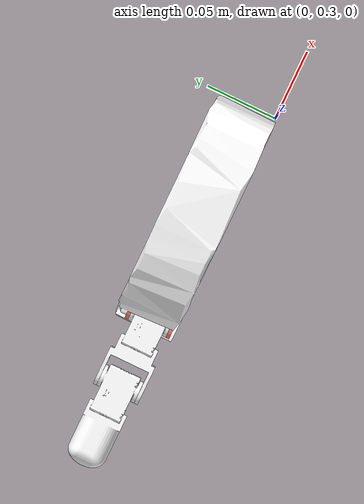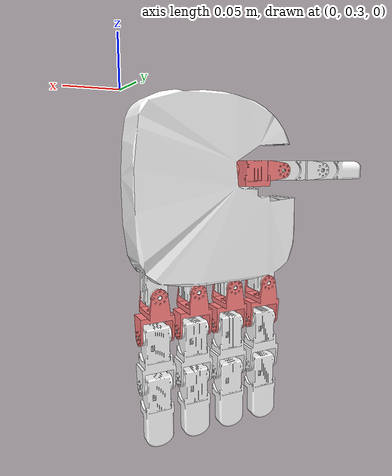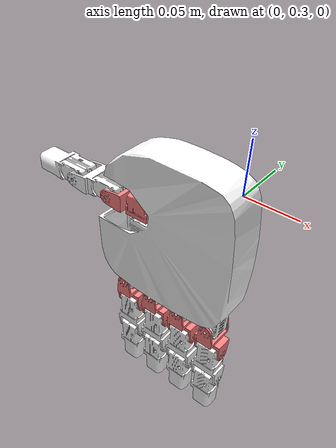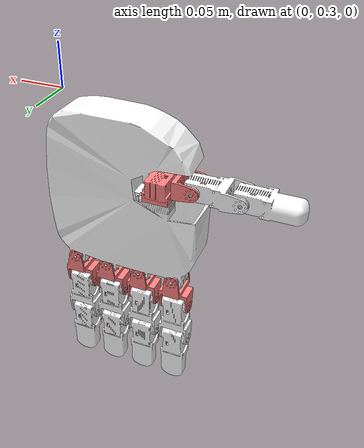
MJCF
<mujoco model="leap_hand_dual_puppeteering">
    <compiler angle="radian" meshdir="../meshes/"/>
    <default>
        <joint damping="1" frictionloss="0.01"/>
        <geom friction="1 0.5 0.5"/>
    </default>
    <option gravity="0 0 -9.81" timestep="0.002"/>

    <asset>
        <mesh name="base_link_simplified" content_type="model/obj" file="base_link_simplified.obj"/>
        <mesh name="Thumb1_Link" content_type="model/stl" file="Thumb1_Link.STL"/>
        <mesh name="Thumb2_Link" content_type="model/stl" file="Thumb2_Link.STL"/>
        <mesh name="Thumb3_Link" content_type="model/stl" file="Thumb3_Link.STL"/>
        <mesh name="Thumb4_Link" content_type="model/stl" file="Thumb4_Link.STL"/>
        <mesh name="Index1_Link" content_type="model/stl" file="Index1_Link.STL"/>
        <mesh name="Index2_Link" content_type="model/stl" file="Index2_Link.STL"/>
        <mesh name="Index3_Link" content_type="model/stl" file="Index3_Link.STL"/>
        <mesh name="Middle1_Link" content_type="model/stl" file="Middle1_Link.STL"/>
        <mesh name="Middle2_Link" content_type="model/stl" file="Middle2_Link.STL"/>
        <mesh name="Middle3_Link" content_type="model/stl" file="Middle3_Link.STL"/>
        <mesh name="Ring1_Link" content_type="model/stl" file="Ring1_Link.STL"/>
        <mesh name="Ring2_Link" content_type="model/stl" file="Ring2_Link.STL"/>
        <mesh name="Ring3_Link" content_type="model/stl" file="Ring3_Link.STL"/>
        <mesh name="Pinky1_Link" content_type="model/stl" file="Pinky1_Link.STL"/>
        <mesh name="Pinky2_Link" content_type="model/stl" file="Pinky2_Link.STL"/>
        <mesh name="Pinky3_Link" content_type="model/stl" file="Pinky3_Link.STL"/>
    </asset>

    <worldbody>
        <body name="base" pos="0 0.3 0">
            <include file="hand_real.xml"/>
        </body>
    </worldbody>

    <actuator>
        <position name="act_J_thumb1" joint="J_thumb1" kp="20" kv="0.1" ctrlrange="-3.14 3.14"/>
        <position name="act_J_thumb2" joint="J_thumb2" kp="2" kv="0.1" ctrlrange="-3.14 3.14"/>
        <position name="act_J_thumb3" joint="J_thumb3" kp="2" kv="0.1" ctrlrange="-3.14 3.14"/>
        <position name="act_J_thumb4" joint="J_thumb4" kp="2" kv="0.1" ctrlrange="-3.14 3.14"/>

        <position name="act_J_index1" joint="J_index1" kp="20" kv="0.1" ctrlrange="-3.14 3.14"/>
        <position name="act_J_index2" joint="J_index2" kp="2" kv="0.1" ctrlrange="-3.14 3.14"/>
        <position name="act_J_index3" joint="J_index3" kp="2" kv="0.1" ctrlrange="-3.14 3.14"/>

        <position name="act_J_middle1" joint="J_middle1" kp="20" kv="0.1" ctrlrange="-3.14 3.14"/>
        <position name="act_J_middle2"  joint="J_middle2"  kp="2" kv="0.1" ctrlrange="-3.14 3.14"/>
        <position name="act_J_middle3" joint="J_middle3" kp="2" kv="0.1" ctrlrange="-3.14 3.14"/>

        <position name="act_J_ring1" joint="J_ring1" kp="20" kv="0.1" ctrlrange="-3.14 3.14"/>
        <position name="act_J_ring2" joint="J_ring2" kp="2" kv="0.1" ctrlrange="-3.14 3.14"/>
        <position name="act_J_ring3" joint="J_ring3" kp="2" kv="0.1" ctrlrange="-3.14 3.14"/>

        <position name="act_J_pinky1" joint="J_pinky1" kp="20" kv="0.1" ctrlrange="-3.14 3.14"/>
        <position name="act_J_pinky2" joint="J_pinky2" kp="2" kv="0.1" ctrlrange="-3.14 3.14"/>
        <position name="act_J_pinky3" joint="J_pinky3" kp="2" kv="0.1" ctrlrange="-3.14 3.14"/>
    </actuator>
</mujoco>

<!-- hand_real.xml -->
<mujoco>

  <geom type="mesh" rgba="1 1 1 1" mesh="base_link_simplified" contype="0" conaffinity="0"/>

  <body name="Thumb1_Link" pos="-0.1227 0.0175 -0.1029" quat="0.707107 0 0 0.707107">
    <inertial pos="0.0063477 -0.000945376 0.0244983" quat="0.000534756 0.701835 -0.000518749 0.712339" mass="0.0118765" diaginertia="1.56227e-06 1.36956e-06 7.3946e-07"/>
    <joint name="J_thumb1" pos="0 0 0" axis="0 0 -1" range="-3.14 3.14"/>
    <geom type="mesh" rgba="1 0.501961 0.501961 1" mesh="Thumb1_Link"/>
    <body name="Thumb2_Link" pos="-0.0005 0 0.0297" quat="0.707105 -0.707108 0 0">
      <inertial pos="0 0 0.021545" quat="0.5 0.5 0.5 0.5" mass="0.00484954" diaginertia="1.03253e-06 9.2868e-07 4.16545e-07"/>
      <joint name="J_thumb2" pos="0 0 0" axis="0 0 -1" range="-3.14 3.14"/>
      <geom type="mesh" rgba="1 0.501961 0.501961 1" mesh="Thumb2_Link"/>
      <body name="Thumb3_Link" pos="0 0 0.0355" quat="0.707107 0 -0.707107 0">
        <inertial pos="0.0202176 -3.20081e-06 0.000783403" quat="0.706611 0.00187659 0.00190458 0.707598" mass="0.0143321" diaginertia="1.90059e-06 1.54257e-06 1.36708e-06"/>
        <joint name="J_thumb3" pos="0 0 0" axis="0 0 -1" range="-3.14 3.14"/>
        <geom type="mesh" rgba="1 1 1 1" mesh="Thumb3_Link"/>
        <body name="Thumb4_Link" pos="0.0507 0 0">
          <inertial pos="0.0324571 0.000463037 0.0004452" quat="0.492542 0.491954 0.507312 0.507955" mass="0.0252146" diaginertia="2.99971e-06 2.65494e-06 1.96564e-06"/>
          <joint name="J_thumb4" pos="0 0 0" axis="0 0 -1" range="-3.14 3.14"/>
          <geom type="mesh" rgba="1 1 1 1" mesh="Thumb4_Link"/>
        </body>
      </body>
    </body>
  </body>
  <body name="Index1_Link" pos="-0.14 0.0201 -0.1897" quat="0.500598 0.499401 0.4994 -0.5006">
    <inertial pos="0.0210002 0 4.99999e-05" quat="0.999999 0 0.00119047 0" mass="0.00969909" diaginertia="1.85736e-06 1.44907e-06 1.44907e-06"/>
    <joint name="J_index1" pos="0 0 0" axis="-0.00238089 0 -0.999997" range="-3.14 3.14"/>
    <geom type="mesh" rgba="1 0.501961 0.501961 1" mesh="Index1_Link"/>
    <body name="Index2_Link" pos="0.0420001 0 0" quat="0.707106 0.707106 0.000841792 -0.000841792">
      <inertial pos="0.0202176 -3.20081e-06 0.000783403" quat="0.706611 0.00187659 0.00190458 0.707598" mass="0.0143321" diaginertia="1.90059e-06 1.54257e-06 1.36708e-06"/>
      <joint name="J_index2" pos="0 0 0" axis="0 0 -1" range="-3.14 3.14"/>
      <geom type="mesh" rgba="1 1 1 1" mesh="Index2_Link"/>
      <body name="Index3_Link" pos="0.0507 0 0">
        <inertial pos="0.0324571 -0.000466675 0.000445378" quat="0.507806 0.506986 0.492158 0.492827" mass="0.0252146" diaginertia="2.99965e-06 2.65494e-06 1.9657e-06"/>
        <joint name="J_index3" pos="0 0 0" axis="0 0 -1" range="-3.14 3.14"/>
        <geom type="mesh" rgba="1 1 1 1" mesh="Index3_Link"/>
      </body>
    </body>
  </body>
  <body name="Middle1_Link" pos="-0.1 0.0201 -0.1897" quat="0.500598 0.499401 0.4994 -0.5006">
    <inertial pos="0.0210002 0 4.99999e-05" quat="0.999999 0 0.00119047 0" mass="0.00969909" diaginertia="1.85736e-06 1.44907e-06 1.44907e-06"/>
    <joint name="J_middle1" pos="0 0 0" axis="-0.00238089 0 -0.999997" range="-3.14 3.14"/>
    <geom type="mesh" rgba="1 0.501961 0.501961 1" mesh="Middle1_Link"/>
    <body name="Middle2_Link" pos="0.0420001 0 0" quat="0.707106 0.707106 0.000841792 -0.000841792">
      <inertial pos="0.0202176 -3.20081e-06 0.000783403" quat="0.706611 0.00187659 0.00190458 0.707598" mass="0.0143321" diaginertia="1.90059e-06 1.54257e-06 1.36708e-06"/>
      <joint name="J_middle2" pos="0 0 0" axis="0 0 -1" range="-3.14 3.14"/>
      <geom type="mesh" rgba="1 1 1 1" mesh="Middle2_Link"/>
      <body name="Middle3_Link" pos="0.0507 0 0">
        <inertial pos="0.0324571 -0.000466676 0.000445379" quat="0.507806 0.506986 0.492158 0.492827" mass="0.0252146" diaginertia="2.99965e-06 2.65494e-06 1.9657e-06"/>
        <joint name="J_middle3" pos="0 0 0" axis="0 0 -1" range="-3.14 3.14"/>
        <geom type="mesh" rgba="1 1 1 1" mesh="Middle3_Link"/>
      </body>
    </body>
  </body>
  <body name="Ring1_Link" pos="-0.06 0.0201 -0.1897" quat="0.500598 0.499401 0.4994 -0.5006">
    <inertial pos="0.0210002 0 4.99999e-05" quat="0.999999 0 0.00119047 0" mass="0.00969909" diaginertia="1.85736e-06 1.44907e-06 1.44907e-06"/>
    <joint name="J_ring1" pos="0 0 0" axis="-0.00238089 0 -0.999997" range="-3.14 3.14"/>
    <geom type="mesh" rgba="1 0.501961 0.501961 1" mesh="Ring1_Link"/>
    <body name="Ring2_Link" pos="0.0420001 0 0" quat="0.707106 0.707106 0.000841792 -0.000841792">
      <inertial pos="0.0202176 -3.20047e-06 0.000783402" quat="0.706611 0.00187662 0.00190462 0.707598" mass="0.0143321" diaginertia="1.90059e-06 1.54257e-06 1.36708e-06"/>
      <joint name="J_ring2" pos="0 0 0" axis="0 0 -1" range="-3.14 3.14"/>
      <geom type="mesh" rgba="1 1 1 1" mesh="Ring2_Link"/>
      <body name="Ring3_Link" pos="0.0507 0 0">
        <inertial pos="0.0324571 -0.000466675 0.000445378" quat="0.507806 0.506986 0.492158 0.492827" mass="0.0252146" diaginertia="2.99965e-06 2.65494e-06 1.9657e-06"/>
        <joint name="J_ring3" pos="0 0 0" axis="0 0 -1" range="-3.14 3.14"/>
        <geom type="mesh" rgba="1 1 1 1" mesh="Ring3_Link"/>
      </body>
    </body>
  </body>
  <body name="Pinky1_Link" pos="-0.02 0.0201 -0.1897" quat="0.500595 0.499404 0.499404 -0.500595">
    <inertial pos="0.0210002 0 4.99999e-05" quat="0.999999 0 0.00119047 0" mass="0.00969909" diaginertia="1.85736e-06 1.44907e-06 1.44907e-06"/>
    <joint name="J_pinky1" pos="0 0 0" axis="-0.00238095 0 -0.999997" range="-3.14 3.14"/>
    <geom type="mesh" rgba="1 0.501961 0.501961 1" mesh="Pinky1_Link"/>
    <body name="Pinky2_Link" pos="0.0420001 0 0" quat="0.707106 0.707106 0.000841792 -0.000841792">
      <inertial pos="0.0202176 -3.20081e-06 0.000783403" quat="0.706611 0.00187659 0.00190458 0.707598" mass="0.0143321" diaginertia="1.90059e-06 1.54257e-06 1.36708e-06"/>
      <joint name="J_pinky2" pos="0 0 0" axis="0 0 -1" range="-3.14 3.14"/>
      <geom type="mesh" rgba="1 1 1 1" mesh="Pinky2_Link"/>
      <body name="Pinky3_Link" pos="0.0507 0 0">
        <inertial pos="0.0324571 -0.000466676 0.000445379" quat="0.507806 0.506986 0.492158 0.492827" mass="0.0252146" diaginertia="2.99965e-06 2.65494e-06 1.9657e-06"/>
        <joint name="J_pinky3" pos="0 0 0" axis="0 0 -1" range="-3.14 3.14"/>
        <geom type="mesh" rgba="1 1 1 1" mesh="Pinky3_Link"/>
      </body>
    </body>
  </body>

</mujoco>
